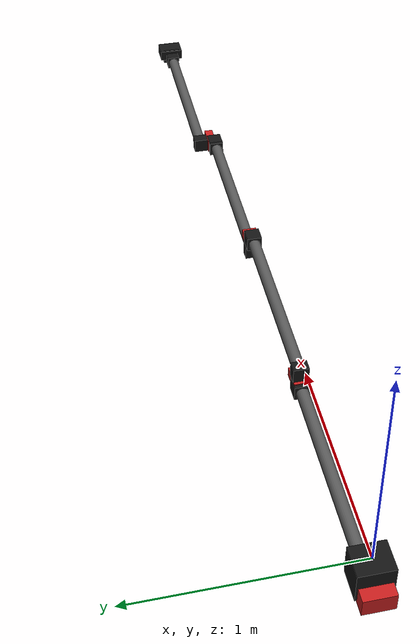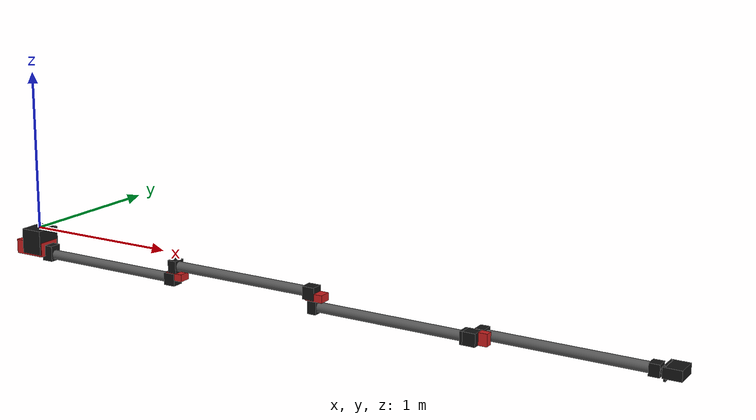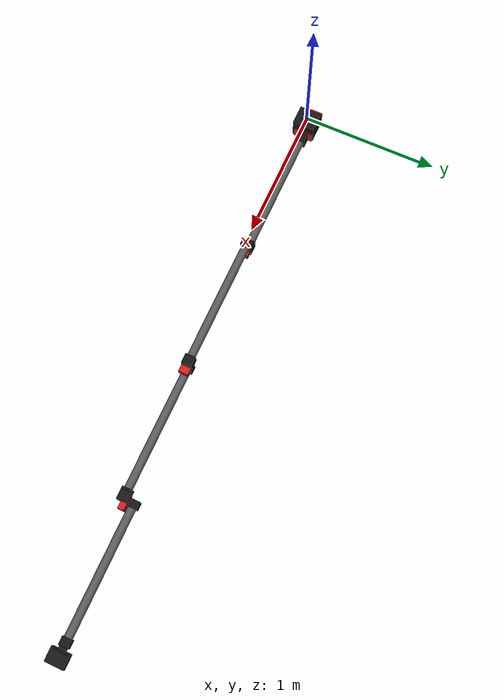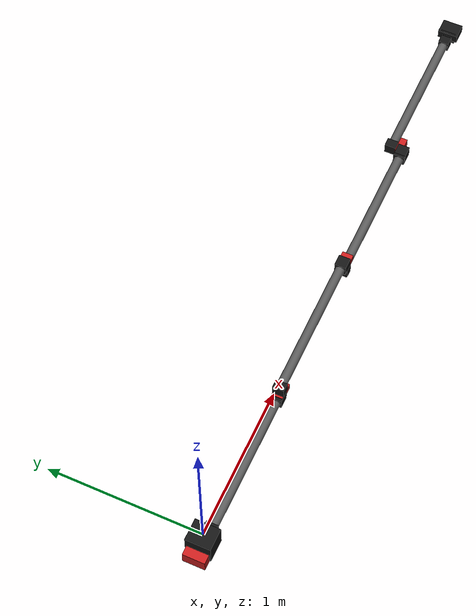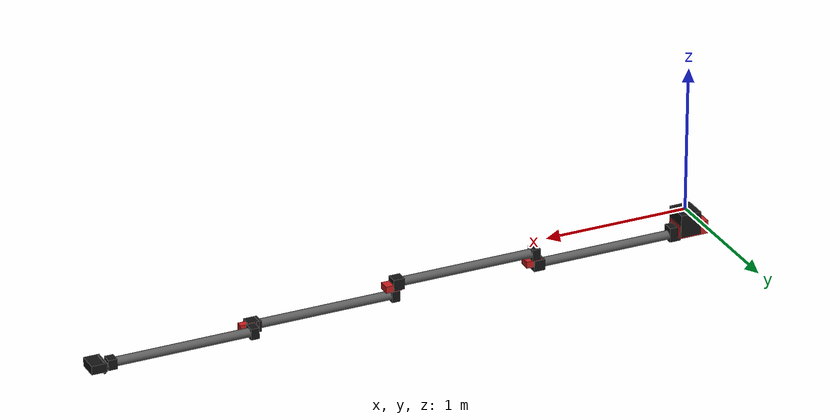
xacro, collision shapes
<?xml version="1.0"?>

<robot name="LIBRA-I" xmlns:xacro="http://www.ros.org/wiki/xacro">

    <!-- Includes -->
    <xacro:include filename="$(find libra)/models/common/common.urdf.xacro"/>

    <xacro:include filename="$(find libra)/models/assemblies/2djnt.urdf.xacro"/>
    <xacro:include filename="$(find libra)/models/assemblies/arm.urdf.xacro"/>
    <xacro:include filename="$(find libra)/models/assemblies/manip.urdf.xacro"/>
    <xacro:include filename="$(find libra)/models/assemblies/sensor_suite.urdf.xacro"/>

    <!-- Model Construction -->
    <link name="base_link"/>
    <xacro:spawn_2djnt parent="base_link"/>
    <xacro:spawn_arm parent="2djnt_out_arm_link"/>
    <xacro:spawn_manip_static parent="arm_out_link"/>
    <xacro:spawn_sensors parent="manip_out_link"/>

</robot>

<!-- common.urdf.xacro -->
<robot xmlns:xacro="http://www.ros.org/wiki/xacro">

    <!-- Prevent duplicate inclusion -->
    <xacro:unless value="$(optenv COMMON_URDF_INCLUDED false)">
        <xacro:property name="COMMON_URDF_INCLUDED" value="true"/>

        <!-- ********************[ PROPERTIES ]******************** -->

        <xacro:property name="PI" value="3.14159265359"/>

        <!-- ********************[ MATERIALS ]******************** -->

        <!-- Colors: Monochrome -->
        <material name="black">
            <color rgba="${20/255} ${20/255} ${20/255} 1"/>
        </material>
        <material name="gray">
            <color rgba="${90/255} ${90/255} ${90/255} 1"/>
        </material>
        <material name="silver">
            <color rgba="${170/255} ${170/255} ${170/255} 1"/>
        </material>
        <material name="white">
            <color rgba="${250/255} ${250/255} ${250/255} 1"/>
        </material>

        <!-- Colors: Primary & Secondary -->
        <material name="red">
            <color rgba="${200/255} ${30/255} ${30/255} 1"/>
        </material>
        <material name="yellow">
            <color rgba="${225/255} ${200/255} ${40/255} 1"/>
        </material>
        <material name="blue">
            <color rgba="${40/255} ${110/255} ${200/255} 1"/>
        </material>

        <material name="orange">
            <color rgba="${220/255} ${110/255} ${40/255} 1"/>
        </material>
        <material name="green">
            <color rgba="${50/255} ${170/255} ${90/255} 1"/>
        </material>
        <material name="purple">
            <color rgba="${150/255} ${50/255} ${200/255} 1"/>
        </material>

        <!-- ********************[ MACROS ]******************** -->

        <xacro:macro name="box_inertia" params="m x y z">
            <inertial>
                <mass value="${m}"/>
                <inertia ixx="${(m/12) * (y*y + z*z)}" ixy="0.0" ixz="0.0"
                        iyy="${(m/12) * (x*x + z*z)}" iyz="0.0"
                        izz="${(m/12) * (x*x + y*y)}"/>
            </inertial>
        </xacro:macro>

        <xacro:macro name="cylinder_inertia" params="m r h">
            <inertial>
                <mass value="${m}"/>
                <inertia ixx="${(m/12) * (3*r*r + h*h)}" ixy = "0" ixz = "0"
                        iyy="${(m/12) * (3*r*r + h*h)}" iyz = "0"
                        izz="${(m/2) * (r*r)}"/>
            </inertial>
        </xacro:macro>

        <xacro:macro name="sphere_inertia" params="m r">
            <inertial>
                <mass value="${m}"/>
                <inertia ixx="${(2/5) * m * (r*r)}" ixy="0.0" ixz="0.0"
                        iyy="${(2/5) * m * (r*r)}" iyz="0.0"
                        izz="${(2/5) * m * (r*r)}"/>
            </inertial>
        </xacro:macro>

    </xacro:unless>
</robot>

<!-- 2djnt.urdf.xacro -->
<robot xmlns:xacro="http://www.ros.org/wiki/xacro">

    <!-- Definition -->
    <xacro:macro name="spawn_2djnt" params="parent">

        <!-- ********************[ PROPERTIES ]******************** -->

        <!-- Stator (static part) -->
        <xacro:property name="d_2djnt_s_L" value="0.143"/>
        <xacro:property name="d_2djnt_s_W" value="0.165"/>
        <xacro:property name="d_2djnt_s_H" value="0.1565"/>
        <xacro:property name="m_2djnt_s" value="2.056"/>

        <!-- Rotor (moved part) -->
        <xacro:property name="d_2djnt_r_L" value="0.204"/>
        <xacro:property name="d_2djnt_r_W" value="0.145"/>
        <xacro:property name="d_2djnt_r_H" value="0.090"/>
        <xacro:property name="m_2djnt_r" value="1.317"/>

        <!-- Arm Connector -->
        <xacro:property name="d_conn_arm_L" value="0.076"/>
        <xacro:property name="d_conn_arm_W" value="0.076"/>
        <xacro:property name="d_conn_arm_H" value="0.0985"/>
        <xacro:property name="m_conn_arm" value="0.326"/>

        <!-- ********************[ LINKS ]******************** -->
        <!-- NOTE
            X = forward/red, Y = left/green, Z = upwards/blue
        -->

        <!-- Stator (static part) -->
        <link name="2d_stator_link">
            <visual>
                <origin xyz="-0.029 0 -0.042" rpy="${PI/2} 0 ${PI/2}"/>
                <geometry><mesh filename="package://libra/meshes/2d-stator.stl" scale="0.001 0.001 0.001"/></geometry>
                <material name="black"/>
            </visual>
            <collision>
                <origin xyz="0 0 0" rpy="0 0 0"/>
                <geometry><box size="${d_2djnt_s_L} ${d_2djnt_s_W} ${d_2djnt_s_H}"/></geometry>
            </collision>
            <xacro:box_inertia m="${m_2djnt_s}" x="${d_2djnt_s_L}" y="${d_2djnt_s_W}" z="${d_2djnt_s_H}"/>
        </link>
        <joint name="${parent}_to_2d_stator" type="fixed">
            <parent link="${parent}"/>
            <child link="2d_stator_link"/>
            <origin xyz="0 0 -${d_2djnt_s_H/2}" rpy="0 0 0"/>
        </joint>

        <!-- Rotor (moved part) -->
        <link name="2d_rotor_pitch_link"/>
        <joint name="Pitch" type="revolute">
            <parent link="2d_stator_link"/>
            <child link="2d_rotor_pitch_link"/>
            <origin xyz="${-d_2djnt_s_L/2 - 0.059 + d_2djnt_r_L/2} 0 ${d_2djnt_s_H/2 - 0.080 - d_2djnt_r_H/2}" rpy="0 0 0"/>
            <axis xyz="0 1 0"/>
            <limit lower="${-10 * PI / 180.0}" upper="${90 * PI / 180.0}" effort="100" velocity="1.0"/>
        </joint>

        <link name="2d_rotor_roll_link">
            <visual>
                <origin xyz="0 0 0.0050" rpy="-${PI/2} ${PI} -${PI/2}"/>
                <geometry><mesh filename="package://libra/meshes/2d-rotor.stl" scale="0.001 0.001 0.001"/></geometry>
                <material name="red"/>
            </visual>
            <collision>
                <origin xyz="0 0 0" rpy="0 0 0"/>
                <geometry><box size="${d_2djnt_r_L} ${d_2djnt_r_W} ${d_2djnt_r_H}"/></geometry>
            </collision>
            <xacro:box_inertia m="${m_2djnt_r}" x="${d_2djnt_r_L}" y="${d_2djnt_r_W}" z="${d_2djnt_r_H}"/>
        </link>
        <joint name="Roll" type="revolute">
            <parent link="2d_rotor_pitch_link"/>
            <child link="2d_rotor_roll_link"/>
            <origin xyz="0 0 0" rpy="0 0 0"/>
            <axis xyz="1 0 0"/>
            <limit lower="${-10 * PI / 180.0}" upper="${10 * PI / 180.0}" effort="100" velocity="1.0"/>
        </joint>

        <!-- Arm Connector -->
        <link name="arm_conn_link">
            <visual>
                <origin xyz="0.0030 0 0.0267" rpy="${PI} 0 0"/>
                <geometry><mesh filename="package://libra/meshes/2d-arm_connector.stl" scale="0.001 0.001 0.001"/></geometry>
                <material name="black"/>
            </visual>
            <collision>
                <origin xyz="0 0 0" rpy="0 0 0"/>
                <geometry><box size="${d_conn_arm_L} ${d_conn_arm_W} ${d_conn_arm_H}"/></geometry>
            </collision>
            <xacro:box_inertia m="${m_conn_arm}" x="${d_conn_arm_L}" y="${d_conn_arm_W}" z="${d_conn_arm_H}"/>
        </link>
        <joint name="2d_roll_to_2d_out_arm" type="fixed">
            <parent link="2d_rotor_roll_link"/>
            <child link="arm_conn_link"/>
            <origin xyz="${(d_2djnt_r_L/2 - 0.022) + d_conn_arm_L/2} 0 ${d_2djnt_r_H/2 - 0.020 - d_conn_arm_H/2}" rpy="0 0 0"/>
        </joint>

        <!-- Outbound Link -->
        <link name="2djnt_out_arm_link"/>
        <joint name="arm_conn_to_2d_out_arm" type="fixed">
            <parent link="arm_conn_link"/>
            <child link="2djnt_out_arm_link"/>
            <origin xyz="${d_conn_arm_L/2} 0 -${d_conn_arm_H/2 - 0.038}" rpy="0 0 0"/>
        </joint>

        <!-- ********************[ GAZEBO CONFIG ]******************** -->

        <gazebo reference="2d_stator_link"><material>Gazebo/Black</material></gazebo>
        <gazebo reference="2d_rotor_roll_link"><material>Gazebo/Red</material></gazebo>
        <gazebo reference="arm_conn_link"><material>Gazebo/Black</material></gazebo>

    </xacro:macro>
</robot>

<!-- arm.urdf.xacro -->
<robot xmlns:xacro="http://www.ros.org/wiki/xacro">

    <!-- Definition -->
    <xacro:macro name="spawn_arm" params="parent">

        <!-- ********************[ PROPERTIES ]******************** -->

        <!-- Arm Links -->
        <xacro:property name="d_arm_link_L" value="0.900"/>
        <xacro:property name="d_arm_link_R" value="0.030"/>
        <xacro:property name="m_arm_link" value="0.395"/>

        <!-- Joint Connectors -->
        <xacro:property name="d_conn_outer_L" value="0.076"/>
        <xacro:property name="d_conn_outer_W" value="0.076"/>
        <xacro:property name="d_conn_outer_H" value="0.076"/>
        <xacro:property name="m_conn_outer" value="0.192"/>

        <xacro:property name="d_conn_inner_L" value="0.056"/>
        <xacro:property name="d_conn_inner_W" value="0.076"/>
        <xacro:property name="d_conn_inner_H" value="0.076"/>
        <xacro:property name="m_conn_inner" value="0.169"/>

        <xacro:property name="d_adapter_L" value="0.017"/>
        <xacro:property name="d_adapter_W" value="0.076"/>
        <xacro:property name="d_adapter_H" value="0.076"/>
        <xacro:property name="m_adapter" value="0.131"/>

        <!-- HEBI X8-16 Actuators -->
        <xacro:property name="d_hebi_L" value="0.110"/>
        <xacro:property name="d_hebi_W" value="0.073"/>
        <xacro:property name="d_hebi_H" value="0.0451"/>
        <xacro:property name="m_hebi" value="0.490"/>

        <!-- ********************[ MACROS ]******************** -->

        <xacro:macro name="link_macro" params="name">
            <link name="${name}">
                <visual>
                    <origin xyz="0 0 0" rpy="0 ${PI/2} ${PI/2}"/>
                    <geometry>
                        <mesh filename="package://libra/meshes/arm-link.stl" scale="0.001 0.001 0.001"/>
                    </geometry>
                    <material name="gray"/>
                </visual>
                <collision>
                    <origin xyz="0 0 0" rpy="0 ${PI/2} 0"/>
                    <geometry>
                        <cylinder length="${d_arm_link_L}" radius="${d_arm_link_R}"/>
                    </geometry>
                </collision>
                <xacro:cylinder_inertia m="${m_arm_link}" r="${d_arm_link_R}" h="${d_arm_link_L}"/>
            </link>
        </xacro:macro>

        <xacro:macro name="joint_subassembly_macro" params="name parent_name origin_xyz origin_rpy rotation_dir:=1">
            <xacro:property name="inbound_correction" value="0.003"/>
            <xacro:property name="outbound_correction" value="0.005"/>

            <!-- Inbound Connection -->
            <link name="${name}_conn_outer_link">
                <visual>
                    <origin xyz="-${inbound_correction} 0 ${d_conn_outer_H/2}" rpy="${PI} 0 ${PI}"/>
                    <geometry>
                        <mesh filename="package://libra/meshes/conn_outer.stl" scale="0.001 0.001 0.001"/>
                    </geometry>
                    <material name="black"/>
                </visual>
                <collision>
                    <origin xyz="0 0 0" rpy="0 0 0"/>
                    <geometry>
                        <box size="${d_conn_outer_L} ${d_conn_outer_W} ${d_conn_outer_H}"/>
                    </geometry>
                </collision>
                <xacro:box_inertia m="${m_conn_outer}" x="${d_conn_outer_L}" y="${d_conn_outer_W}" z="${d_conn_outer_H}"/>
            </link>
            <joint name="${parent_name}_to_${name}_conn_outer" type="fixed">
                <parent link="${parent_name}_link"/>
                <child link="${name}_conn_outer_link"/>
                <origin xyz="${origin_xyz}" rpy="${origin_rpy}"/>
            </joint>

            <!-- Actuator -->
            <link name="${name}_hebi_stator_link">
                <visual>
                    <origin xyz="${d_conn_outer_L/2 - 0.05314 - inbound_correction} 0 0" rpy="0 0 0"/>
                    <geometry>
                        <mesh filename="package://libra/meshes/hebi_x8-16.stl" scale="0.001 0.001 0.001"/>
                    </geometry>
                    <material name="red"/>
                </visual>
                <collision>
                    <origin xyz="0 0 0" rpy="0 0 0"/>
                    <geometry>
                        <box size="${d_hebi_L} ${d_hebi_W} ${d_hebi_H}"/>
                    </geometry>
                </collision>
                <xacro:box_inertia m="${m_hebi}" x="${d_hebi_L}" y="${d_hebi_W}" z="${d_hebi_H}"/>
            </link>
            <joint name="${name}_conn_outer_to_${name}_hebi" type="fixed">
                <parent link="${name}_conn_outer_link"/>
                <child link="${name}_hebi_stator_link"/>
                <origin xyz="${d_conn_outer_L/2 + 0.05314 - d_hebi_L/2} 0 ${-d_conn_outer_H/2 + 0.036 + d_hebi_H/2}" rpy="0 0 0"/>
            </joint>

            <link name="${name}_hebi_rotor_link"/>
            <joint name="${name}" type="revolute">
                <parent link="${name}_hebi_stator_link"/>
                <child link="${name}_hebi_rotor_link"/>
                <origin xyz="${d_hebi_L/2 - 0.073} 0 ${d_hebi_H/2}" rpy="0 0 0"/>
                <axis xyz="0 0 ${rotation_dir}"/>  <!-- although this defines a yaw joint, it can be changed by providing a non-zero origin_rpy (see J3) -->
                <limit lower="-${PI}" upper="${PI}" effort="100" velocity="1.0"/>
            </joint>

            <!-- Outbound Connection -->
            <link name="${name}_conn_inner_link">
                <visual>
                    <origin xyz="-${outbound_correction} 0 -${d_conn_inner_H/2}" rpy="0 0 0"/>
                    <geometry>
                        <mesh filename="package://libra/meshes/conn_inner.stl" scale="0.001 0.001 0.001"/>
                    </geometry>
                    <material name="black"/>
                </visual>
                <collision>
                    <origin xyz="0 0 0" rpy="0 0 0"/>
                    <geometry>
                        <box size="${d_conn_inner_L} ${d_conn_inner_W} ${d_conn_inner_H}"/>
                    </geometry>
                </collision>
                <xacro:box_inertia m="${m_conn_inner}" x="${d_conn_inner_L}" y="${d_conn_inner_W}" z="${d_conn_inner_H}"/>
            </link>
            <joint name="${name}_hebi_to_${name}_conn_inner" type="fixed">
                <parent link="${name}_hebi_rotor_link"/>
                <child link="${name}_conn_inner_link"/>
                <origin xyz="${d_conn_inner_L/2 - 0.023} 0 ${d_conn_inner_H/2}" rpy="0 0 0"/>
            </joint>
        </xacro:macro>

        <!-- ********************[ LINKS ]******************** -->
        <!-- NOTE
            X = forward/red, Y = left/green, Z = upwards/blue
        -->

        <!-- Arm Segment #1 -->
        <xacro:link_macro name="L1_link"/>
        <joint name="parent_to_L1" type="fixed">
            <parent link="${parent}"/>
            <child link="L1_link"/>
            <origin xyz="${d_arm_link_L/2} 0 0" rpy="0 0 0"/>
        </joint>

        <xacro:joint_subassembly_macro name="J1" parent_name="L1"
            origin_xyz="${d_arm_link_L/2 + d_conn_outer_L/2} 0 0" origin_rpy="0 0 0"/>

        <!-- Arm Segment #2 -->
        <xacro:link_macro name="L2_link"/>
        <joint name="J1_to_L2" type="fixed">
            <parent link="J1_conn_inner_link"/>
            <child link="L2_link"/>
            <origin xyz="${d_conn_inner_L/2 + d_arm_link_L/2} 0 0" rpy="0 0 0"/>
        </joint>

        <xacro:joint_subassembly_macro name="J2" parent_name="L2"
            origin_xyz="${d_arm_link_L/2 + d_conn_outer_L/2} 0 0" origin_rpy="${PI} 0 0" rotation_dir="-1"/>

        <!-- Arm Segment #3 -->
        <xacro:link_macro name="L3_link"/>
        <joint name="J2_to_L3" type="fixed">
            <parent link="J2_conn_inner_link"/>
            <child link="L3_link"/>
            <origin xyz="${d_conn_inner_L/2 + d_arm_link_L/2} 0 0" rpy="0 0 0"/>
        </joint>

        <link name="J3_conn_adapter_link">
            <visual>
                <origin xyz="-${d_adapter_L/2} 0 0" rpy="${PI/2} -${PI/2} 0"/>
                <geometry>
                    <mesh filename="package://libra/meshes/conn_adapter.stl" scale="0.001 0.001 0.001"/>
                </geometry>
                <material name="black"/>
            </visual>
            <collision>
                <origin xyz="0 0 0" rpy="0 0 0"/>
                <geometry>
                    <box size="${d_adapter_L} ${d_adapter_W} ${d_adapter_H}"/>
                </geometry>
            </collision>
            <xacro:box_inertia m="${m_adapter}" x="${d_adapter_L}" y="${d_adapter_W}" z="${d_adapter_H}"/>
        </link>
        <joint name="L3_to_J3_conn_adapter" type="fixed">
            <parent link="L3_link"/>
            <child link="J3_conn_adapter_link"/>
            <origin xyz="${d_arm_link_L/2 + d_adapter_L/2} 0 0" rpy="0 0 0"/>
        </joint>

        <xacro:joint_subassembly_macro name="J3" parent_name="J3_conn_adapter"
            origin_xyz="${d_adapter_L/2 + d_conn_outer_L/2} 0 0" origin_rpy="${PI/2} 0 0" rotation_dir="-1"/>

        <!-- Arm Segment #4 -->
        <xacro:link_macro name="L4_link"/>
        <joint name="J3_to_L4" type="fixed">
            <parent link="J3_conn_inner_link"/>
            <child link="L4_link"/>
            <origin xyz="${d_conn_inner_L/2 + d_arm_link_L/2} 0 0" rpy="${PI/2} 0 0"/>
        </joint>

        <!-- Outbound Link -->
        <link name="arm_out_link"/>
        <joint name="L4_to_arm_out" type="fixed">
            <parent link="L4_link"/>
            <child link="arm_out_link"/>
            <origin xyz="${d_arm_link_L/2} 0 0" rpy="0 0 0"/>
        </joint>

        <!-- ********************[ GAZEBO CONFIG ]******************** -->

        <gazebo reference="L1_link"><material>Gazebo/Gray</material></gazebo>
        <gazebo reference="J1_link"><material>Gazebo/Red</material></gazebo>
        <gazebo reference="L2_link"><material>Gazebo/Gray</material></gazebo>
        <gazebo reference="J2_link"><material>Gazebo/Red</material></gazebo>
        <gazebo reference="L3_link"><material>Gazebo/Gray</material></gazebo>
        <gazebo reference="J3_link"><material>Gazebo/Red</material></gazebo>
        <gazebo reference="L4_link"><material>Gazebo/Gray</material></gazebo>

    </xacro:macro>
</robot>

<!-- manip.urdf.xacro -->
<robot xmlns:xacro="http://www.ros.org/wiki/xacro">

    <!-- Definition #1: 3-Servo Manipulator -->
    <xacro:macro name="spawn_manip" params="parent">

        <!-- ********************[ PROPERTIES ]******************** -->

        <!-- Servo Mount (arm tip) -->
        <xacro:property name="d_servo_mount_L" value="0.100"/>
        <xacro:property name="d_servo_mount_W" value="0.070"/>
        <xacro:property name="d_servo_mount_H" value="0.0935"/>
        <xacro:property name="m_servo_mount" value="0.170"/>

        <!-- Servo -->
        <xacro:property name="d_servo_L" value="0.054"/>
        <xacro:property name="d_servo_W" value="0.0462"/>
        <xacro:property name="d_servo_H" value="0.020"/>

        <!-- Servo w/ Bracket -->
        <xacro:property name="d_servo_bracket_L" value="0.058"/>
        <xacro:property name="d_servo_bracket_W" value="0.0493"/>
        <xacro:property name="d_servo_bracket_H" value="0.025"/>

        <xacro:property name="m_servo" value="0.039"/>

        <!-- Sensor Mounting Bracket -->
        <xacro:property name="d_sensor_bracket_L" value="0.065"/>
        <xacro:property name="d_sensor_bracket_W" value="0.025"/>
        <xacro:property name="d_sensor_bracket_H" value="0.055"/>
        <xacro:property name="m_sensor_bracket" value="0.0081"/>

        <!-- ********************[ LINKS ]******************** -->
        <!-- NOTE
            X = forward/red, Y = left/green, Z = upwards/blue
        -->

        <!-- Servo Mount (arm tip) -->
        <link name="servo_mount_link">
            <visual>
                <origin xyz="-${d_servo_mount_L/2} 0 ${d_servo_mount_H/2 - 0.002}" rpy="${PI/2} 0 ${PI/2}"/>
                <geometry>
                    <mesh filename="package://libra/meshes/mount-servos.stl" scale="0.001 0.001 0.001"/>
                </geometry>
                <material name="black"/>
            </visual>
            <collision>
                <origin xyz="0 0 0" rpy="0 0 0"/>
                <geometry>
                    <box size="${d_servo_mount_L} ${d_servo_mount_W} ${d_servo_mount_H}"/>
                </geometry>
            </collision>
            <xacro:box_inertia m="${m_servo_mount}" x="${d_servo_mount_L}" y="${d_servo_mount_W}" z="${d_servo_mount_H}"/>
        </link>
        <joint name="parent_to_servo_mount" type="fixed">
            <parent link="${parent}"/>
            <child link="servo_mount_link"/>
            <origin xyz="${d_servo_mount_L/2} 0 ${0.042 - d_servo_mount_H/2}" rpy="0 0 0"/>
        </joint>

        <!-- Servo Joint #1 -->
        <link name="MJ1_stator_link">
            <visual>
                <origin xyz="0.0104 -0.0156 0.002" rpy="${PI/2} 0 0"/>
                <geometry>
                    <mesh filename="package://libra/meshes/manip-j1.stl" scale="0.001 0.001 0.001"/>
                </geometry>
                <material name="purple"/>
            </visual>
            <collision>
                <origin xyz="0 0 0" rpy="0 0 0"/>
                <geometry>
                    <box size="${d_servo_L} ${d_servo_W} ${d_servo_H}"/>
                </geometry>
            </collision>
            <xacro:box_inertia m="${m_servo}" x="${d_servo_L}" y="${d_servo_W}" z="${d_servo_H}"/>
        </link>
        <joint name="servo_mount_to_MJ1_stator" type="fixed">
            <parent link="servo_mount_link"/>
            <child link="MJ1_stator_link"/>
            <origin xyz="${d_servo_mount_L/2 - 0.029} ${-d_servo_mount_W/2 + d_servo_W/2 - 0.0178} ${d_servo_mount_H/2 - 0.016}" rpy="0 0 0"/>
        </joint>

        <link name="MJ1_rotor_link"/>
        <joint name="MJ1" type="revolute">
            <parent link="MJ1_stator_link"/>
            <child link="MJ1_rotor_link"/>
            <origin xyz="${d_servo_L/2 - 0.01675} -${d_servo_W/2} ${d_servo_H/2 - 0.010}" rpy="0 0 0"/>
            <axis xyz="0 1 0"/>
            <limit lower="-${PI/2}" upper="${PI/2}" effort="50" velocity="1.5"/>
        </joint>

        <!-- Servo Joint #2 (w/ bracket) -->
        <link name="MJ2_stator_link">
            <visual>
                <origin xyz="-0.0104 -0.003 ${d_servo_bracket_H/2 + 0.0045}" rpy="0 0 ${PI}"/>
                <geometry>
                    <mesh filename="package://libra/meshes/manip-j2_3.stl" scale="0.001 0.001 0.001"/>
                </geometry>
                <material name="purple"/>
            </visual>
            <collision>
                <origin xyz="0 0 0" rpy="${PI/2} 0 0"/>
                <geometry>
                    <box size="${d_servo_bracket_L} ${d_servo_bracket_W} ${d_servo_bracket_H}"/>
                </geometry>
            </collision>
            <xacro:box_inertia m="${m_servo}" x="${d_servo_bracket_L}" y="${d_servo_bracket_W}" z="${d_servo_bracket_H}"/>
        </link>
        <joint name="MJ1_rotor_to_MJ2_stator" type="fixed">
            <parent link="MJ1_rotor_link"/>
            <child link="MJ2_stator_link"/>
            <origin xyz="${d_servo_bracket_L/2 - 0.0185} -${d_servo_bracket_H/2} ${d_servo_bracket_W/2 - 0.0248}" rpy="0 0 0"/>
        </joint>

        <link name="MJ2_rotor_link"/>
        <joint name="MJ2" type="revolute">
            <parent link="MJ2_stator_link"/>
            <child link="MJ2_rotor_link"/>
            <origin xyz="${-d_servo_bracket_L/2 + 0.01875} ${-d_servo_bracket_H/2 + 0.0115} ${d_servo_bracket_W/2}" rpy="0 0 0"/>
            <axis xyz="0 0 1"/>
            <limit lower="-${PI/2}" upper="${PI/2}" effort="50" velocity="1.5"/>
        </joint>

        <!-- Servo Joint #3 (w/ bracket) -->
        <link name="MJ3_stator_link">
            <visual>
                <origin xyz="0.0104 -${d_servo_bracket_W/2 - 0.0075} 0.003" rpy="${PI/2} 0 0"/>
                <geometry>
                    <mesh filename="package://libra/meshes/manip-j2_3.stl" scale="0.001 0.001 0.001"/>
                </geometry>
                <material name="purple"/>
            </visual>
            <collision>
                <origin xyz="0 0 0" rpy="${PI/2} 0 0"/>
                <geometry>
                    <box size="${d_servo_bracket_L} ${d_servo_bracket_H} ${d_servo_bracket_W}"/>
                </geometry>
            </collision>
            <xacro:box_inertia m="${m_servo}" x="${d_servo_bracket_L}" y="${d_servo_bracket_H}" z="${d_servo_bracket_W}"/>
        </link>
        <joint name="MJ2_rotor_to_MJ3_stator" type="fixed">
            <parent link="MJ2_rotor_link"/>
            <child link="MJ3_stator_link"/>
            <origin xyz="${d_servo_bracket_L/2 - 0.0185} ${d_servo_bracket_W/2 - 0.0245} ${d_servo_bracket_H/2}" rpy="0 0 0"/>
        </joint>

        <link name="MJ3_rotor_link"/>
        <joint name="MJ3" type="revolute">
            <parent link="MJ3_stator_link"/>
            <child link="MJ3_rotor_link"/>
            <origin xyz="${d_servo_bracket_L/2 - 0.01875} -${d_servo_bracket_W/2} ${d_servo_bracket_H/2 - 0.0115}" rpy="0 0 0"/>
            <axis xyz="0 1 0"/>
            <limit lower="-${PI/2}" upper="${PI/2}" effort="50" velocity="1.5"/>
        </joint>

        <!-- Sensor Mounting Bracket -->
        <link name="sensor_bracket_link">
            <visual>
                <origin xyz="${d_sensor_bracket_L/2} 0 0" rpy="${PI/2} 0 -${PI/2}"/>
                <geometry>
                    <mesh filename="package://libra/meshes/sensor_bracket.stl" scale="0.001 0.001 0.001"/>
                </geometry>
                <material name="black"/>
            </visual>
            <collision>
                <origin xyz="0 0 0" rpy="0 0 0"/>
                <geometry>
                    <box size="${d_sensor_bracket_L} ${d_sensor_bracket_H} ${d_sensor_bracket_W}"/>
                </geometry>
            </collision>
            <xacro:box_inertia m="${m_sensor_bracket}" x="${d_sensor_bracket_L}" y="${d_sensor_bracket_H}" z="${d_sensor_bracket_W}"/>
        </link>
        <joint name="MJ3_rotor_to_sensor_bracket" type="fixed">
            <parent link="MJ3_rotor_link"/>
            <child link="sensor_bracket_link"/>
            <origin xyz="${d_sensor_bracket_L/2 - 0.0125} ${d_sensor_bracket_W} 0" rpy="0 0 0"/>
        </joint>

        <!-- Outbound Link -->
        <link name="manip_out_link"/>
        <joint name="sensor_bracket_to_manip_out" type="fixed">
            <parent link="sensor_bracket_link"/>
            <child link="manip_out_link"/>
            <origin xyz="${d_sensor_bracket_L/2} 0 0" rpy="0 0 0"/>
        </joint>

        <!-- ********************[ GAZEBO CONFIG ]******************** -->

        <gazebo reference="servo_mount_link"><material>Gazebo/Black</material></gazebo>
        <gazebo reference="MJ1_stator_link"><material>Gazebo/Purple</material></gazebo>
        <gazebo reference="MJ2_stator_link"><material>Gazebo/Purple</material></gazebo>
        <gazebo reference="MJ3_stator_link"><material>Gazebo/Purple</material></gazebo>
        <gazebo reference="sensor_bracket_link"><material>Gazebo/Black</material></gazebo>

    </xacro:macro>

    <!-- Definition #2: Static Manipulator Mount -->
    <xacro:macro name="spawn_manip_static" params="parent">

        <!-- ********************[ PROPERTIES ]******************** -->

        <!-- Static Mount -->
        <xacro:property name="d_static_L" value="0.060"/>
        <xacro:property name="d_static_W" value="0.070"/>
        <xacro:property name="d_static_H" value="0.070"/>
        <xacro:property name="m_static" value="0.150"/>

        <!-- Sensor Mounting Bracket -->
        <xacro:property name="d_sensor_bracket_L" value="0.065"/>
        <xacro:property name="d_sensor_bracket_W" value="0.025"/>
        <xacro:property name="d_sensor_bracket_H" value="0.055"/>
        <xacro:property name="m_sensor_bracket" value="0.0081"/>

        <!-- ********************[ LINKS ]******************** -->
        <!-- NOTE
            X = forward/red, Y = left/green, Z = upwards/blue
        -->

        <!-- Static Mount -->
        <link name="static_mount_link">
            <visual>
                <origin xyz="${-d_static_L/2 + 0.0049} 0 0" rpy="${PI/2} 0 ${PI/2}"/>
                <geometry>
                    <mesh filename="package://libra/meshes/mount-static.stl" scale="0.001 0.001 0.001"/>
                </geometry>
                <material name="black"/>
            </visual>
            <collision>
                <origin xyz="0 0 0" rpy="0 0 0"/>
                <geometry>
                    <box size="${d_static_L} ${d_static_W} ${d_static_H}"/>
                </geometry>
            </collision>
            <xacro:box_inertia m="${m_static}" x="${d_static_L}" y="${d_static_W}" z="${d_static_H}"/>
        </link>
        <joint name="parent_to_static_mount" type="fixed">
            <parent link="${parent}"/>
            <child link="static_mount_link"/>
            <origin xyz="${d_static_L/2} 0 0" rpy="0 0 0"/>
        </joint>

        <link name="pseudo_rotor_link"/>
        <joint name="Static-Manip" type="revolute">
            <parent link="static_mount_link"/>
            <child link="pseudo_rotor_link"/>
            <origin xyz="${d_static_L/2 - 0.023} ${-d_static_W/2 + 0.01} 0" rpy="0 0 0"/>
            <axis xyz="0 1 0"/>
            <limit lower="-${PI/2}" upper="${PI/2}" effort="50" velocity="1.5"/>
        </joint>

        <!-- Sensor Mounting Bracket -->
        <link name="sensor_bracket_link">
            <visual>
                <origin xyz="${d_sensor_bracket_L/2} 0 0" rpy="${PI/2} 0 -${PI/2}"/>
                <geometry>
                    <mesh filename="package://libra/meshes/sensor_bracket.stl" scale="0.001 0.001 0.001"/>
                </geometry>
                <material name="black"/>
            </visual>
            <collision>
                <origin xyz="0 0 0" rpy="0 0 0"/>
                <geometry>
                    <box size="${d_sensor_bracket_L} ${d_sensor_bracket_H} ${d_sensor_bracket_W}"/>
                </geometry>
            </collision>
            <xacro:box_inertia m="${m_sensor_bracket}" x="${d_sensor_bracket_L}" y="${d_sensor_bracket_H}" z="${d_sensor_bracket_W}"/>
        </link>
        <joint name="pseudo_rotor_to_sensor_bracket" type="fixed">
            <parent link="pseudo_rotor_link"/>
            <child link="sensor_bracket_link"/>
            <origin xyz="${d_sensor_bracket_L/2 - 0.0125} ${d_sensor_bracket_W} 0" rpy="0 0 0"/>
        </joint>

        <!-- Outbound Link -->
        <link name="manip_out_link"/>
        <joint name="sensor_bracket_to_manip_out" type="fixed">
            <parent link="sensor_bracket_link"/>
            <child link="manip_out_link"/>
            <origin xyz="${d_sensor_bracket_L/2} 0 0" rpy="0 0 0"/>
        </joint>

        <!-- ********************[ GAZEBO CONFIG ]******************** -->

        <gazebo reference="static_mount_link"><material>Gazebo/Black</material></gazebo>
        <gazebo reference="sensor_bracket_link"><material>Gazebo/Black</material></gazebo>

    </xacro:macro>
</robot>

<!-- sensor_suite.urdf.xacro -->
<robot xmlns:xacro="http://www.ros.org/wiki/xacro">

    <!-- Definition -->
    <xacro:macro name="spawn_sensors" params="parent">

        <!-- ********************[ PROPERTIES ]******************** -->

        <!-- Mounts -->
        <xacro:property name="m_lidar_L" value="0.012514"/>
        <xacro:property name="m_lidar_W" value="0.100000"/>
        <xacro:property name="m_lidar_H" value="0.084000"/>
        <xacro:property name="m_lidar_m" value="0.009"/>

        <xacro:property name="m_camera_L" value="0.104349"/>
        <xacro:property name="m_camera_W" value="0.135861"/>
        <xacro:property name="m_camera_H" value="0.059941"/>
        <xacro:property name="m_camera_m" value="0.056"/>

        <!-- 2D LIDAR (LightWare SF45-B) -->
        <xacro:property name="lidar_W" value="0.048462"/>
        <xacro:property name="lidar_H" value="0.043979"/>
        <xacro:property name="lidar_L" value="0.050587"/>
        <xacro:property name="lidar_m" value="0.058"/>

        <!-- RGB-D camera (Intel RealSense D456) -->
        <xacro:property name="camera_W" value="0.123999"/>
        <xacro:property name="camera_H" value="0.029093"/>
        <xacro:property name="camera_L" value="0.026004"/>
        <xacro:property name="camera_m" value="0.116"/>

        <!-- ********************[ LINKS ]******************** -->
        <!-- NOTE
            X = forward/red, Y = left/green, Z = upwards/blue
        -->

        <!-- Sensor Suite Base -->
        <link name="sensor_suite_base_link"/>
        <joint name="parent_to_sensor_suite_base" type="fixed">
            <parent link="${parent}"/>
            <child link="sensor_suite_base_link"/>
            <origin xyz="0 0 0" rpy="0 0 0"/>
        </joint>

        <!-- LIDAR Mount -->
        <link name="mount_lidar_link">
            <visual>
                <origin xyz="0 0 0" rpy="${PI/2} 0 ${PI/2}"/>
                <geometry>
                    <mesh filename="package://libra/meshes/mount_g-lidar.stl" scale="0.001 0.001 0.001"/>
                </geometry>
                <material name="black"/>
            </visual>
            <collision>
                <origin xyz="0 0 0" rpy="0 0 0"/>
                <geometry>
                    <box size="${m_lidar_L} ${m_lidar_W} ${m_lidar_H}"/>
                </geometry>
            </collision>
            <xacro:box_inertia m="${m_lidar_m}" x="${m_lidar_L}" y="${m_lidar_W}" z="${m_lidar_H}"/>
        </link>
        <joint name="base_to_mount_lidar" type="fixed">
            <parent link="sensor_suite_base_link"/>
            <child link="mount_lidar_link"/>
            <origin xyz="0 0 0" rpy="0 0 0"/>
        </joint>

        <!-- LIDAR -->
        <link name="lidar_link">
            <visual>
                <origin xyz="0.013602 0 0.028351" rpy="0 0 -${PI/2}"/>
                <geometry>
                    <mesh filename="package://libra/meshes/lidar_sf45b-simplified.stl" scale="0.001 0.001 0.001"/>
                </geometry>
                <material name="blue"/>
            </visual>
            <collision>
                <origin xyz="0 0 ${lidar_H/2}" rpy="0 0 0"/>
                <geometry>
                    <box size="${lidar_L} ${lidar_W} ${lidar_H}"/>
                </geometry>
            </collision>
            <xacro:box_inertia m="${lidar_m}" x="${lidar_L}" y="${lidar_W}" z="${lidar_H}"/>
        </link>
        <joint name="mount_lidar_to_lidar" type="fixed">
            <parent link="mount_lidar_link"/>
            <child link="lidar_link"/>
            <origin xyz="0.006 0 0" rpy="0 ${PI/2} 0"/>  <!-- facing downwards -->
        </joint>

        <!-- Camera Mount -->
        <link name="mount_camera_link">
            <visual>
                <origin xyz="0 0 0" rpy="-${PI/2} 0 ${PI/2}"/>
                <geometry>
                    <mesh filename="package://libra/meshes/mount_g-realsense.stl" scale="0.001 0.001 0.001"/>
                </geometry>
                <material name="black"/>
            </visual>
            <collision>
                <origin xyz="0.045175 0 0.009540" rpy="0 0 0"/>
                <geometry>
                    <box size="${m_camera_L} ${m_camera_W} ${m_camera_H}"/>
                </geometry>
            </collision>
            <xacro:box_inertia m="${m_camera_m}" x="${m_camera_L}" y="${m_camera_W}" z="${m_camera_H}"/>
        </link>
        <joint name="base_to_mount_camera" type="fixed">
            <parent link="sensor_suite_base_link"/>
            <child link="mount_camera_link"/>
            <origin xyz="-0.002 0 0" rpy="0 0 0"/>  <!-- accounts for mounting bracket thickness -->
        </joint>

        <!-- Camera -->
        <link name="camera_link">
            <visual>
                <origin xyz="0.026 0 0" rpy="${PI/2} 0 ${PI/2}"/>
                <geometry>
                    <mesh filename="package://libra/meshes/realsense_d456.stl" scale="0.001 0.001 0.001"/>
                </geometry>
                <material name="blue"/>
            </visual>
            <collision>
                <origin xyz="${camera_L/2} 0 0" rpy="0 0 0"/>
                <geometry>
                    <box size="${camera_L} ${camera_W} ${camera_H}"/>
                </geometry>
            </collision>
            <xacro:box_inertia m="${camera_m}" x="${camera_L}" y="${camera_W}" z="${camera_H}"/>
        </link>
        <joint name="mount_camera_to_camera" type="fixed">
            <parent link="mount_camera_link"/>
            <child link="camera_link"/>
            <origin xyz="0.068267 0 0" rpy="${PI} 0 0"/>  <!-- upside-down -->
        </joint>

        <!-- ********************[ GAZEBO CONFIG ]******************** -->

        <gazebo reference="mount_lidar_link"><material>Gazebo/Black</material></gazebo>
        <gazebo reference="lidar_link"><material>Gazebo/Blue</material></gazebo>
        <gazebo reference="mount_camera_link"><material>Gazebo/Black</material></gazebo>
        <gazebo reference="camera_link"><material>Gazebo/Blue</material></gazebo>

    </xacro:macro>
</robot>
